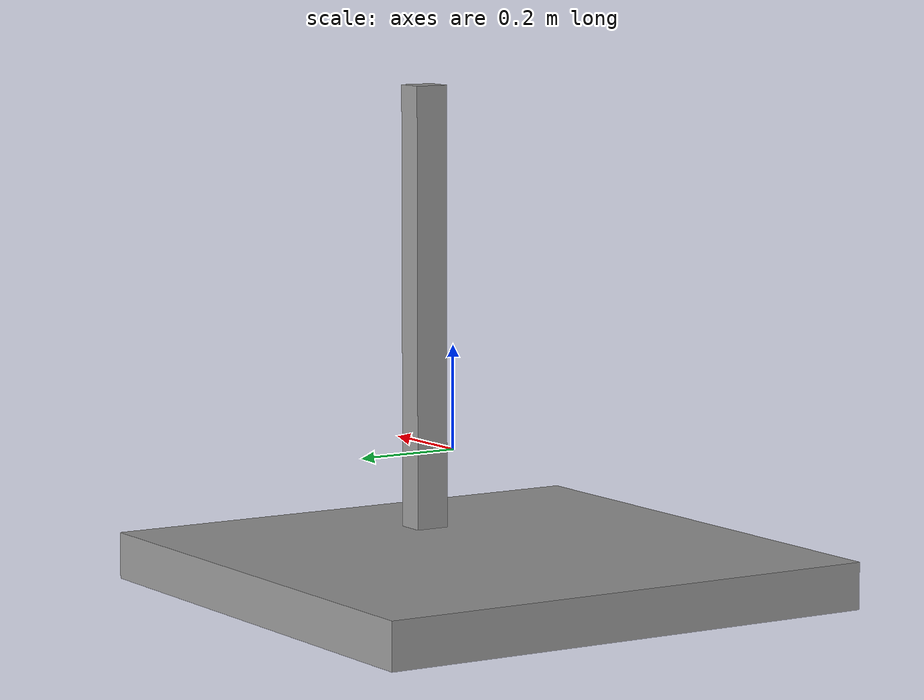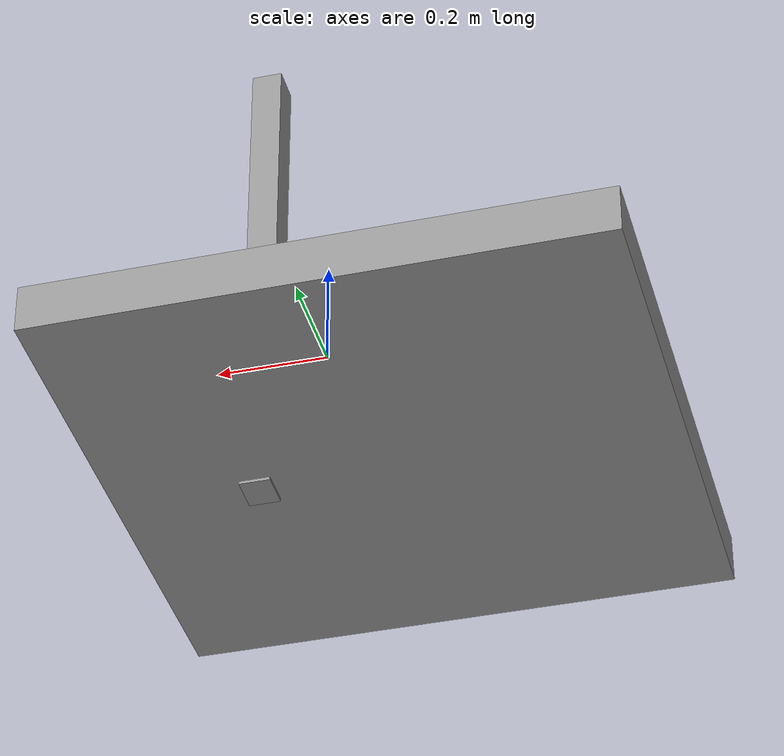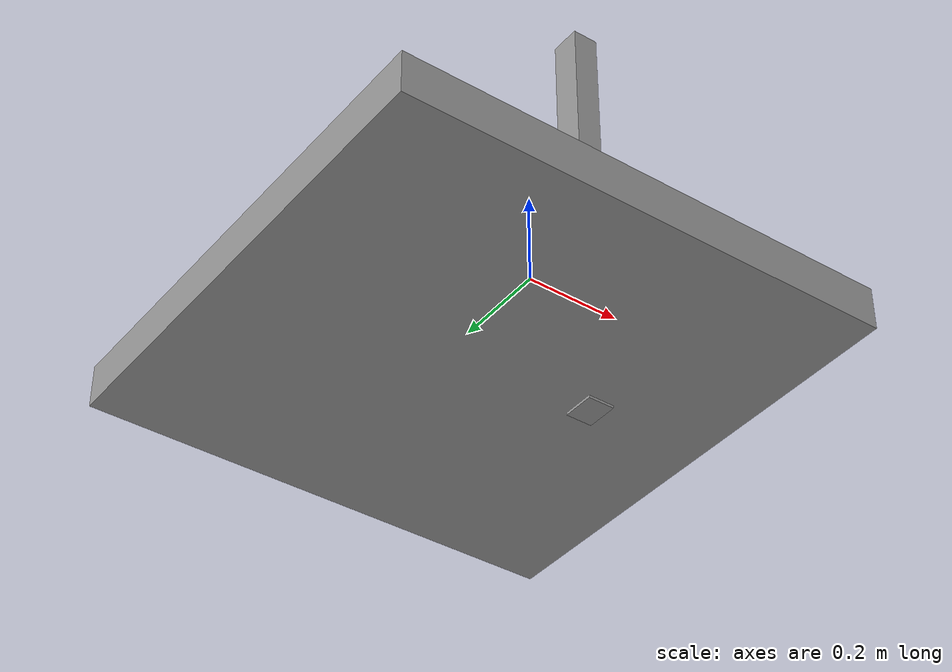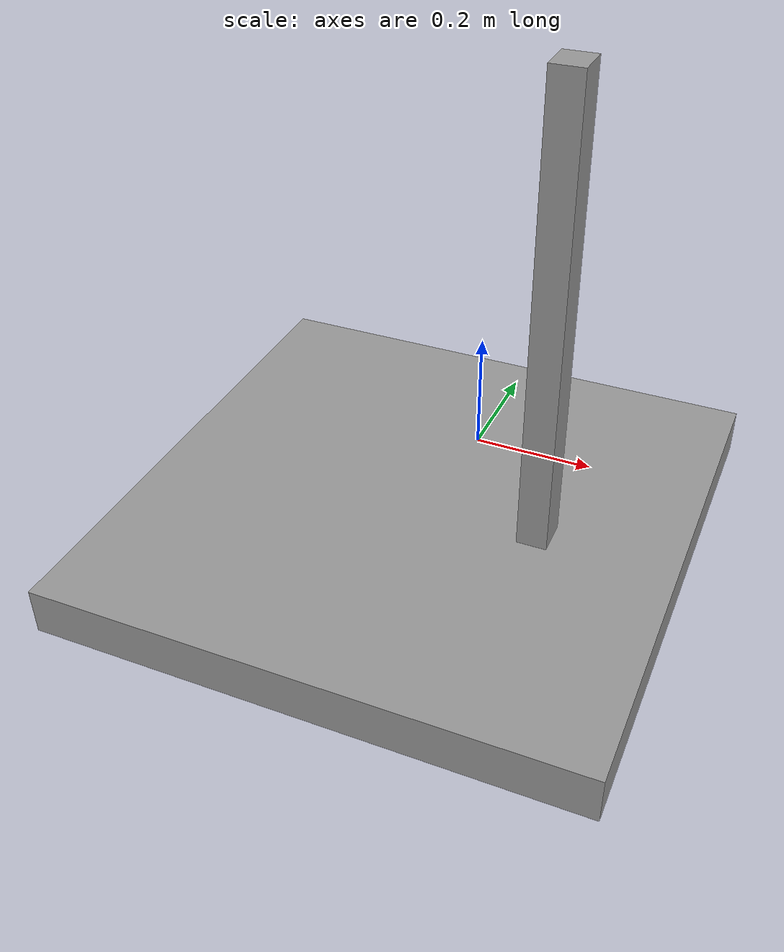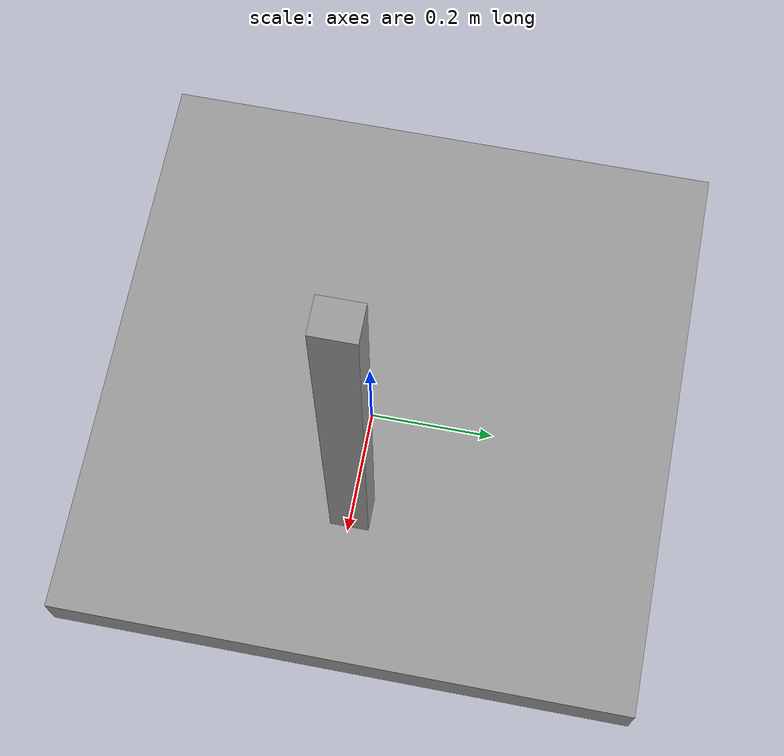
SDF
<?xml version="1.0"?>
<sdf version='1.7'>
  <model name='pendulum_test'>
    <link name='link_0'>
      <inertial>
        <mass>0.088789</mass>
        <inertia>
          <ixx>0.0074574</ixx>
          <ixy>0</ixy>
          <ixz>0</ixz>
          <iyy>0.0074574</iyy>
          <iyz>0</iyz>
          <izz>0.0147982</izz>
        </inertia>
        <pose>0 0 0 0 -0 0</pose>
      </inertial>
      <pose>-0.120965 0.011902 -0.210858 0 -0 0</pose>
      <visual name='visual'>
        <pose>0 0 0 0 -0 0</pose>
        <geometry>
          <box>
            <size>1 1 0.088778</size>
          </box>
        </geometry>
        <material>
          <lighting>1</lighting>
          <script>
            <uri>file://media/materials/scripts/gazebo.material</uri>
            <name>Gazebo/Grey</name>
          </script>
          <shader type='pixel'/>
          <emissive>0 0 0 1</emissive>
        </material>
        <transparency>0</transparency>
        <cast_shadows>1</cast_shadows>
      </visual>
      <collision name='collision'>
        <laser_retro>0</laser_retro>
        <max_contacts>10</max_contacts>
        <pose>0 0 0 0 -0 0</pose>
        <geometry>
          <box>
            <size>1 1 0.088778</size>
          </box>
        </geometry>
        <surface>
          <friction>
            <ode>
              <mu>1</mu>
              <mu2>1</mu2>
              <fdir1>0 0 0</fdir1>
              <slip1>0</slip1>
              <slip2>0</slip2>
            </ode>
            <torsional>
              <coefficient>1</coefficient>
              <patch_radius>0</patch_radius>
              <surface_radius>0</surface_radius>
              <use_patch_radius>1</use_patch_radius>
              <ode>
                <slip>0</slip>
              </ode>
            </torsional>
          </friction>
          <bounce>
            <restitution_coefficient>0</restitution_coefficient>
            <threshold>1e+06</threshold>
          </bounce>
          <contact>
            <collide_without_contact>0</collide_without_contact>
            <collide_without_contact_bitmask>1</collide_without_contact_bitmask>
            <collide_bitmask>1</collide_bitmask>
            <ode>
              <soft_cfm>0</soft_cfm>
              <soft_erp>0.2</soft_erp>
              <kp>1e+13</kp>
              <kd>1</kd>
              <max_vel>0.01</max_vel>
              <min_depth>0</min_depth>
            </ode>
            <bullet>
              <split_impulse>1</split_impulse>
              <split_impulse_penetration_threshold>-0.01</split_impulse_penetration_threshold>
              <soft_cfm>0</soft_cfm>
              <soft_erp>0.2</soft_erp>
              <kp>1e+13</kp>
              <kd>1</kd>
            </bullet>
          </contact>
        </surface>
      </collision>
    </link>
    <link name='link_1'>
      <inertial>
        <mass>0.00348708</mass>
        <inertia>
          <ixx>0.000259891</ixx>
          <ixy>0</ixy>
          <ixz>0</ixz>
          <iyy>0.000259522</iyy>
          <iyz>0</iyz>
          <izz>2.17856e-06</izz>
        </inertia>
        <pose>0 0 0 0 -0 0</pose>
      </inertial>
      <pose>0.120964 -0.011902 0.210858 0 -0 0</pose>
      <visual name='visual'>
        <pose>0 0 0 0 -0 0</pose>
        <geometry>
          <box>
            <size>0.055811 0.066198 0.943384</size>
          </box>
        </geometry>
        <material>
          <lighting>1</lighting>
          <script>
            <uri>file://media/materials/scripts/gazebo.material</uri>
            <name>Gazebo/Grey</name>
          </script>
          <shader type='pixel'/>
          <emissive>0 0 0 1</emissive>
        </material>
        <transparency>0</transparency>
        <cast_shadows>1</cast_shadows>
      </visual>
      <collision name='collision'>
        <laser_retro>0</laser_retro>
        <max_contacts>10</max_contacts>
        <pose>0 0 0 0 -0 0</pose>
        <geometry>
          <box>
            <size>0.055811 0.066198 0.943384</size>
          </box>
        </geometry>
        <surface>
          <friction>
            <ode>
              <mu>1</mu>
              <mu2>1</mu2>
              <fdir1>0 0 0</fdir1>
              <slip1>0</slip1>
              <slip2>0</slip2>
            </ode>
            <torsional>
              <coefficient>1</coefficient>
              <patch_radius>0</patch_radius>
              <surface_radius>0</surface_radius>
              <use_patch_radius>1</use_patch_radius>
              <ode>
                <slip>0</slip>
              </ode>
            </torsional>
          </friction>
          <bounce>
            <restitution_coefficient>0</restitution_coefficient>
            <threshold>1e+06</threshold>
          </bounce>
          <contact>
            <collide_without_contact>0</collide_without_contact>
            <collide_without_contact_bitmask>1</collide_without_contact_bitmask>
            <collide_bitmask>1</collide_bitmask>
            <ode>
              <soft_cfm>0</soft_cfm>
              <soft_erp>0.2</soft_erp>
              <kp>1e+13</kp>
              <kd>1</kd>
              <max_vel>0.01</max_vel>
              <min_depth>0</min_depth>
            </ode>
            <bullet>
              <split_impulse>1</split_impulse>
              <split_impulse_penetration_threshold>-0.01</split_impulse_penetration_threshold>
              <soft_cfm>0</soft_cfm>
              <soft_erp>0.2</soft_erp>
              <kp>1e+13</kp>
              <kd>1</kd>
            </bullet>
          </contact>
        </surface>
      </collision>
    </link>
    <joint name='link_0_JOINT_2' type='revolute'>
      <parent>link_0</parent>
      <child>link_1</child>
      <pose>0 0 -0.5 0 -0 0</pose>
      <axis>
        <xyz>1 0 0</xyz>
        <limit>
          <lower>-1.79769e+308</lower>
          <upper>1.79769e+308</upper>
          <effort>-1</effort>
          <velocity>-1</velocity>
        </limit>
        <dynamics>
          <spring_reference>0</spring_reference>
          <spring_stiffness>0</spring_stiffness>
          <damping>0</damping>
        </dynamics>
      </axis>
      <physics>
        <ode>
          <limit>
            <cfm>0</cfm>
            <erp>0.2</erp>
          </limit>
          <suspension>
            <cfm>0</cfm>
            <erp>0.2</erp>
          </suspension>
        </ode>
      </physics>
    </joint>
    <static>0</static>
    <allow_auto_disable>1</allow_auto_disable>
  </model>
</sdf>
